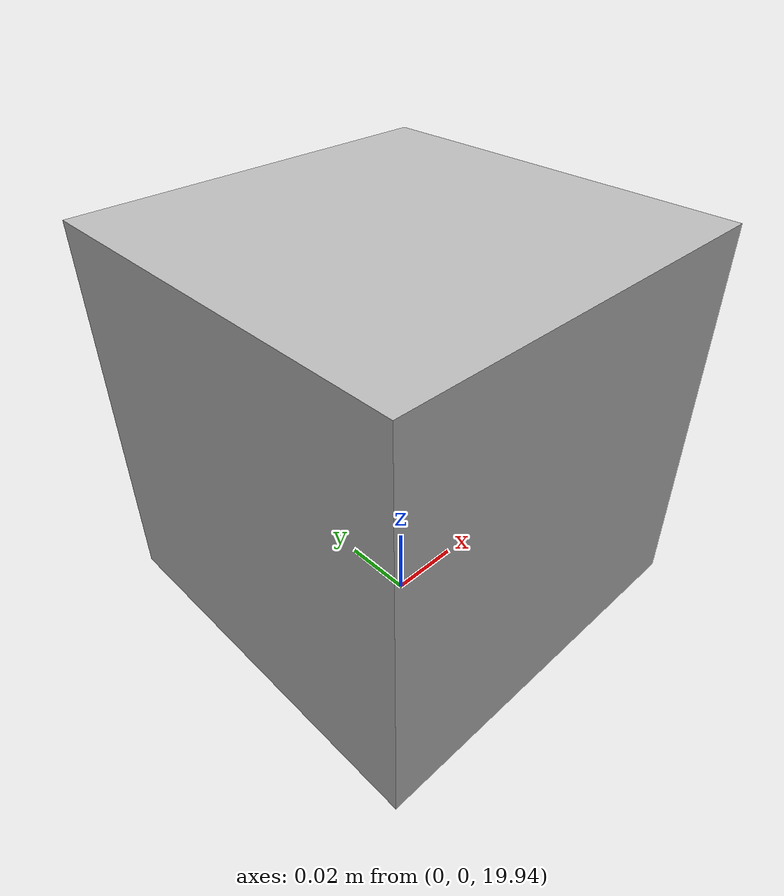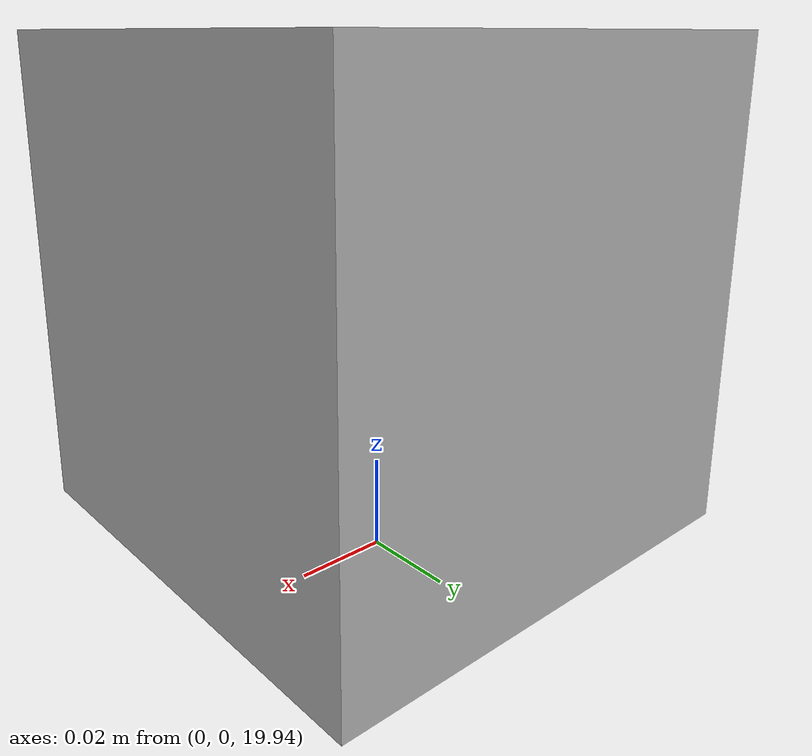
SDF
<sdf version="1.4">
  <world name="default">

    <scene>
      <ambient>0.4 0.4 0.4 1</ambient>
      <background>0.6 0.6 0.6 1</background>
      <shadows>false</shadows>
    </scene>

    <!-- A global light source -->
    <include>
      <uri>model://sun</uri>
    </include>

    <!-- A ground plane -->
    <include>
      <uri>model://ground_plane</uri>
    </include>
    <light name='user_directional_light_0' type='directional'>
      <pose>0 0 20 0 0 0</pose>
    </light>
    <physics type="ode">
      <real_time_update_rate>1000.0</real_time_update_rate>
      <max_step_size>0.001</max_step_size>
      <real_time_factor>1</real_time_factor>
      <ode>
        <solver>
          <type>quick</type>
          <iters>150</iters>
          <precon_iters>0</precon_iters>
          <sor>1.400000</sor>
          <use_dynamic_moi_rescaling>1</use_dynamic_moi_rescaling>
        </solver>
        <constraints>
          <cfm>0.00001</cfm>
          <erp>0.2</erp>
          <contact_max_correcting_vel>2000.000000</contact_max_correcting_vel>
          <contact_surface_layer>0.01000</contact_surface_layer>
        </constraints>
      </ode>
    </physics>
    <model name='camera'>
      <static>true</static>
      <pose>-0 0 20 0 1.57 0</pose>
      <link name='link'>
        <visual name='visual'>
          <geometry>
            <box>
              <size>0.1 0.1 0.1</size>
            </box>
          </geometry>
        </visual>
        <sensor name='my_camera' type='camera'>
          <camera>
            <save enabled="false">
              <path>/output</path>
            </save>
            <horizontal_fov>1.00</horizontal_fov>
            <image>
              <width>960</width>
              <height>540</height>
            </image>
            <clip>
              <near>0.1</near>
              <far>100</far>
            </clip>
          </camera>
          <plugin name="camera_controller" filename="libgazebo_ros_camera.so">
        <alwaysOn>true</alwaysOn>
        <updateRate>0.0</updateRate>
        <cameraName>rrbot/camera1</cameraName>
        <imageTopicName>image_raw</imageTopicName>
        <cameraInfoTopicName>camera_info</cameraInfoTopicName>
        <frameName>camera_link</frameName>
        <hackBaseline>0.07</hackBaseline>
        <distortionK1>0.0</distortionK1>
        <distortionK2>0.0</distortionK2>
        <distortionK3>0.0</distortionK3>
        <distortionT1>0.0</distortionT1>
        <distortionT2>0.0</distortionT2>
      </plugin>
          <always_on>1</always_on>
          <update_rate>30</update_rate>
        </sensor>
      </link>
    </model>

  </world>
</sdf>
